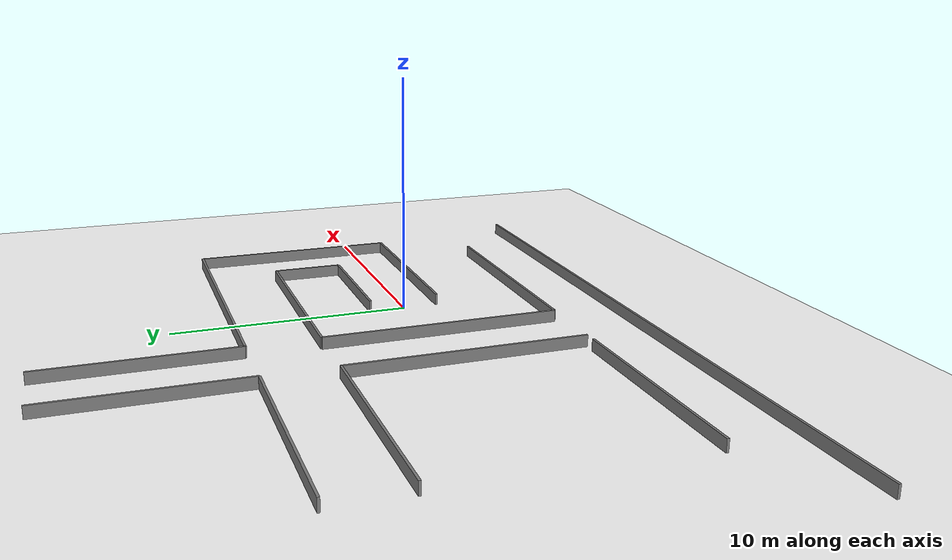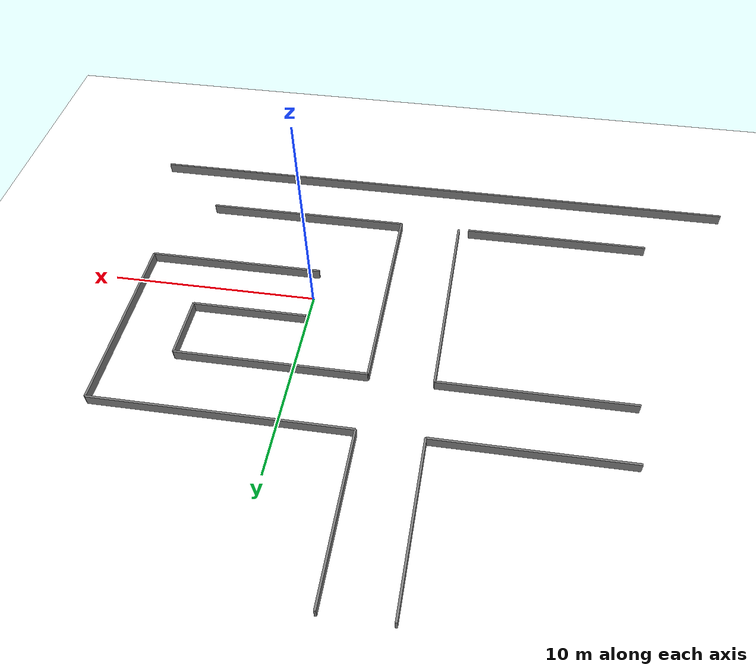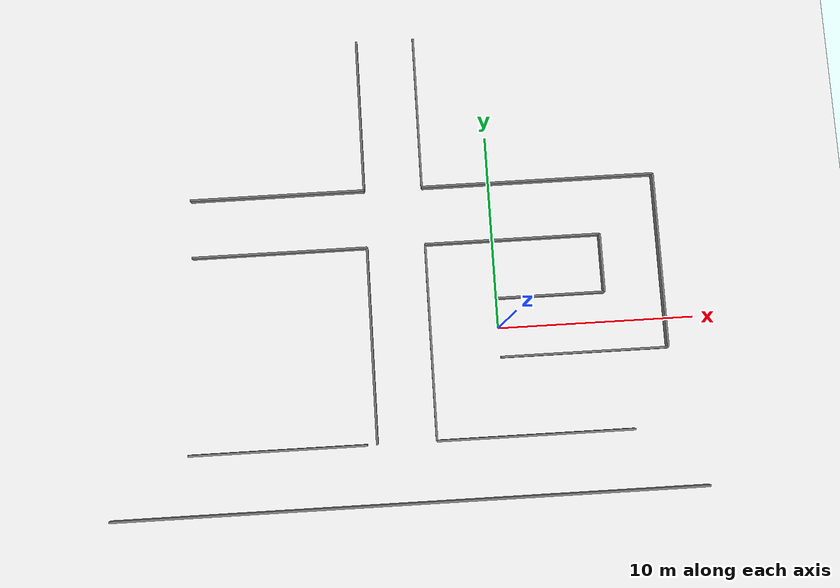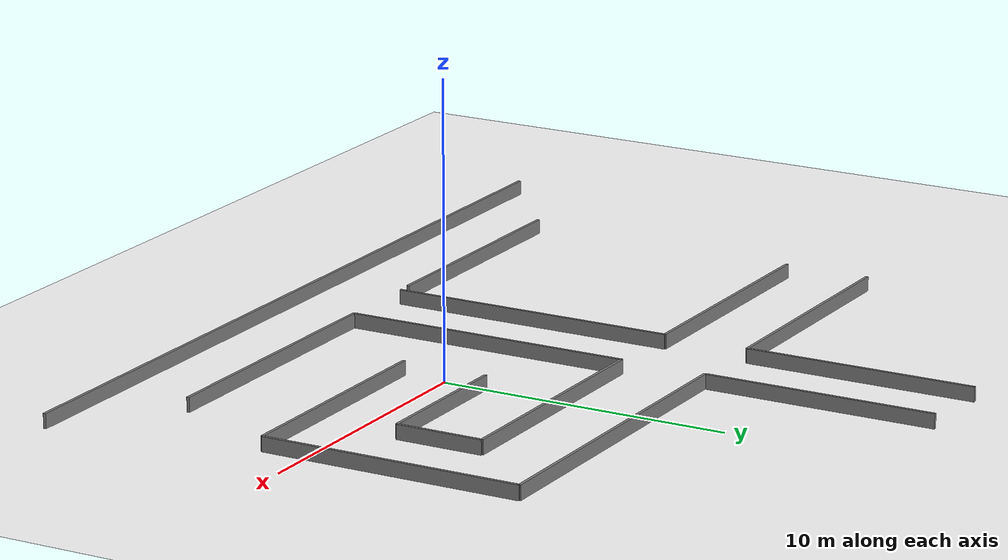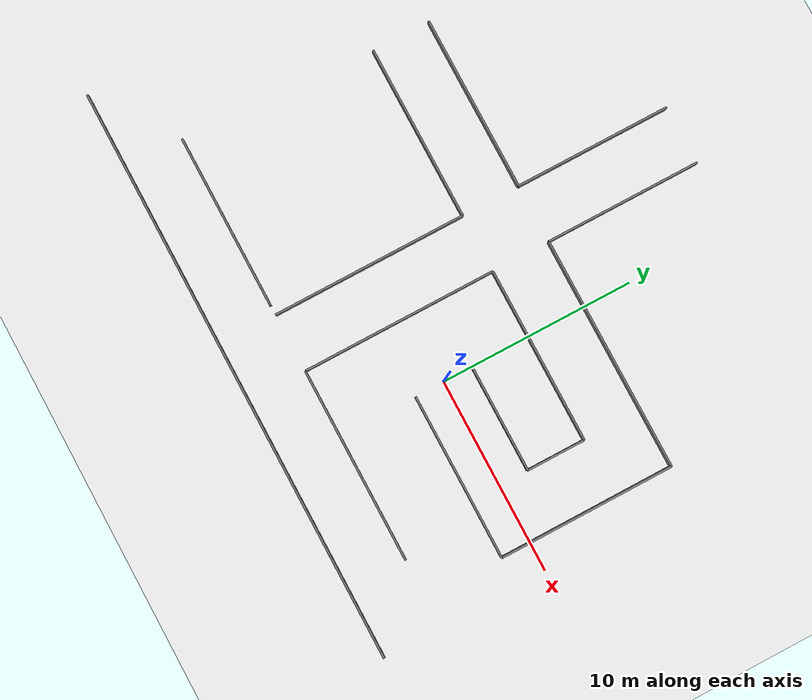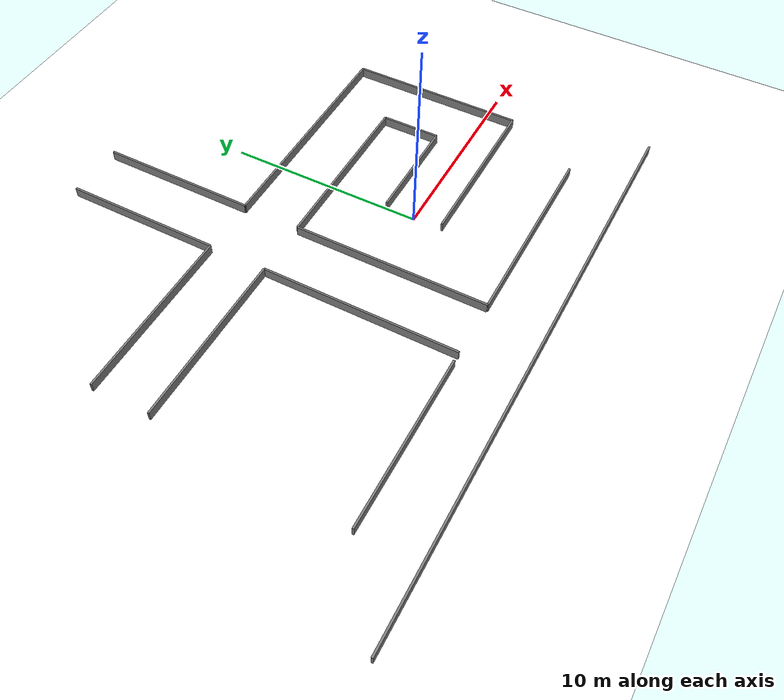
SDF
<sdf version="1.9">
 <world name="empty">
  <physics name="1ms" type="ignored">
   <max_step_size>0.001</max_step_size>
   <real_time_factor>1</real_time_factor>
   <real_time_update_rate>1000</real_time_update_rate>
  </physics>
  <plugin name="gz::sim::systems::Physics" filename="ignition-gazebo-physics-system"/>
  <plugin name="gz::sim::systems::UserCommands" filename="ignition-gazebo-user-commands-system"/>
  <plugin name="gz::sim::systems::SceneBroadcaster" filename="ignition-gazebo-scene-broadcaster-system"/>
  <plugin name="gz::sim::systems::Contact" filename="ignition-gazebo-contact-system"/>
  <gravity>0 0 -9.8</gravity>
  <magnetic_field>6e-06 2.3e-05 -4.2e-05</magnetic_field>
  <atmosphere type="adiabatic"/>
  <scene><ambient>0.4 0.4 0.4 1</ambient><background>0.7 0.7 0.7 1</background><shadows>true</shadows></scene>
  <light name="sun" type="directional">
   <pose>0 0 10 0 -0 0</pose>
   <cast_shadows>false</cast_shadows>
   <intensity>1.5</intensity>
   <direction>-0.5 0.1 -0.9</direction>
   <diffuse>1 1 1 1</diffuse>
   <specular>0.8 0.8 0.8 1</specular>
  </light>
  <model name="ground_plane">
   <static>true</static>
   <link name="link">
    <collision name="collision">
     <geometry><plane><normal>0 0 1</normal><size>100 100</size></plane></geometry>
    </collision>
    <visual name="visual">
     <geometry><plane><normal>0 0 1</normal><size>100 100</size></plane></geometry>
     <material>
      <diffuse>1 1 1 1</diffuse>
      <specular>0.2 0.2 0.2 1</specular>
      <pbr>
       <metal>
        <albedo_map>model://asphalt_plane/materials/textures/tarmac.png</albedo_map>
        <metalness>0.0</metalness>
       </metal>
      </pbr>
     </material>
    </visual>
    <inertial>
     <mass>1</mass>
     <inertia><ixx>1</ixx><ixy>0</ixy><ixz>0</ixz><iyy>1</iyy><iyz>0</iyz><izz>1</izz></inertia>
    </inertial>
   </link>
  </model>
  <model name="wall_start_right">
   <static>true</static>
   <pose>4.25 -1.5 0.25 0 0 0</pose>
   <link name="link">
    <collision name="collision"><geometry><box><size>8.5 0.1 0.5</size></box></geometry></collision>
    <visual name="visual">
     <geometry><box><size>8.5 0.1 0.5</size></box></geometry>
     <material><ambient>0.5 0.5 0.5 1</ambient></material>
    </visual>
   </link>
  </model>
  <model name="wall_start_left">
   <static>true</static>
   <pose>2.75 1.5 0.25 0 0 0</pose>
   <link name="link">
    <collision name="collision"><geometry><box><size>5.5 0.1 0.5</size></box></geometry></collision>
    <visual name="visual">
     <geometry><box><size>5.5 0.1 0.5</size></box></geometry>
     <material><ambient>0.5 0.5 0.5 1</ambient></material>
    </visual>
   </link>
  </model>
  <model name="wall_uturn_outer">
   <static>true</static>
   <pose>8.5 3 0.25 0 0 1.5708</pose>
   <link name="link">
    <collision name="collision"><geometry><box><size>9 0.1 0.5</size></box></geometry></collision>
    <visual name="visual">
     <geometry><box><size>9 0.1 0.5</size></box></geometry>
     <material><ambient>0.5 0.5 0.5 1</ambient></material>
    </visual>
   </link>
  </model>
  <model name="wall_uturn_inner">
   <static>true</static>
   <pose>5.5 3 0.25 0 0 1.5708</pose>
   <link name="link">
    <collision name="collision"><geometry><box><size>3 0.1 0.5</size></box></geometry></collision>
    <visual name="visual">
     <geometry><box><size>3 0.1 0.5</size></box></geometry>
     <material><ambient>0.5 0.5 0.5 1</ambient></material>
    </visual>
   </link>
  </model>
  <model name="wall_top_outer">
   <static>true</static>
   <pose>2.5 7.5 0.25 0 0 0</pose>
   <link name="link">
    <collision name="collision"><geometry><box><size>12 0.1 0.5</size></box></geometry></collision>
    <visual name="visual">
     <geometry><box><size>12 0.1 0.5</size></box></geometry>
     <material><ambient>0.5 0.5 0.5 1</ambient></material>
    </visual>
   </link>
  </model>
  <model name="wall_top_inner">
   <static>true</static>
   <pose>1.0 4.5 0.25 0 0 0</pose>
   <link name="link">
    <collision name="collision"><geometry><box><size>9 0.1 0.5</size></box></geometry></collision>
    <visual name="visual">
     <geometry><box><size>9 0.1 0.5</size></box></geometry>
     <material><ambient>0.5 0.5 0.5 1</ambient></material>
    </visual>
   </link>
  </model>
  <model name="wall_straight_top">
   <static>true</static>
   <pose>-11.0 7.5 0.25 0 0 0</pose>
   <link name="link">
    <collision name="collision"><geometry><box><size>9 0.1 0.5</size></box></geometry></collision>
    <visual name="visual">
     <geometry><box><size>9 0.1 0.5</size></box></geometry>
     <material><ambient>0.5 0.5 0.5 1</ambient></material>
    </visual>
   </link>
  </model>
  <model name="wall_straight_bottom">
   <static>true</static>
   <pose>-11.0 4.5 0.25 0 0 0</pose>
   <link name="link">
    <collision name="collision"><geometry><box><size>9 0.1 0.5</size></box></geometry></collision>
    <visual name="visual">
     <geometry><box><size>9 0.1 0.5</size></box></geometry>
     <material><ambient>0.5 0.5 0.5 1</ambient></material>
    </visual>
   </link>
  </model>
  <model name="wall_right_left">
   <static>true</static>
   <pose>-6.5 11.5 0.25 0 0 1.5708</pose>
   <link name="link">
    <collision name="collision"><geometry><box><size>8 0.1 0.5</size></box></geometry></collision>
    <visual name="visual">
     <geometry><box><size>8 0.1 0.5</size></box></geometry>
     <material><ambient>0.5 0.5 0.5 1</ambient></material>
    </visual>
   </link>
  </model>
  <model name="wall_right_right">
   <static>true</static>
   <pose>-3.5 11.5 0.25 0 0 1.5708</pose>
   <link name="link">
    <collision name="collision"><geometry><box><size>8 0.1 0.5</size></box></geometry></collision>
    <visual name="visual">
     <geometry><box><size>8 0.1 0.5</size></box></geometry>
     <material><ambient>0.5 0.5 0.5 1</ambient></material>
    </visual>
   </link>
  </model>
  <model name="wall_left_left">
   <static>true</static>
   <pose>-6.5 -0.5 0.25 0 0 1.5708</pose>
   <link name="link">
    <collision name="collision"><geometry><box><size>10 0.1 0.5</size></box></geometry></collision>
    <visual name="visual">
     <geometry><box><size>10 0.1 0.5</size></box></geometry>
     <material><ambient>0.5 0.5 0.5 1</ambient></material>
    </visual>
   </link>
  </model>
  <model name="wall_left_right">
   <static>true</static>
   <pose>-3.5 -0.5 0.25 0 0 1.5708</pose>
   <link name="link">
    <collision name="collision"><geometry><box><size>10 0.1 0.5</size></box></geometry></collision>
    <visual name="visual">
     <geometry><box><size>10 0.1 0.5</size></box></geometry>
     <material><ambient>0.5 0.5 0.5 1</ambient></material>
    </visual>
   </link>
  </model>
  <model name="wall_t_bottom">
   <static>true</static>
   <pose>-5 -8.5 0.25 0 0 0</pose>
   <link name="link">
    <collision name="collision"><geometry><box><size>30 0.1 0.5</size></box></geometry></collision>
    <visual name="visual">
     <geometry><box><size>30 0.1 0.5</size></box></geometry>
     <material><ambient>0.5 0.5 0.5 1</ambient></material>
    </visual>
   </link>
  </model>
  <model name="wall_t_inner_left">
   <static>true</static>
   <pose>-11.5 -5.5 0.25 0 0 0</pose>
   <link name="link">
    <collision name="collision"><geometry><box><size>9 0.1 0.5</size></box></geometry></collision>
    <visual name="visual">
     <geometry><box><size>9 0.1 0.5</size></box></geometry>
     <material><ambient>0.5 0.5 0.5 1</ambient></material>
    </visual>
   </link>
  </model>
  <model name="wall_t_inner_right">
   <static>true</static>
   <pose>1.5 -5.5 0.25 0 0 0</pose>
   <link name="link">
    <collision name="collision"><geometry><box><size>10 0.1 0.5</size></box></geometry></collision>
    <visual name="visual">
     <geometry><box><size>10 0.1 0.5</size></box></geometry>
     <material><ambient>0.5 0.5 0.5 1</ambient></material>
    </visual>
   </link>
  </model>
 </world>
</sdf>
